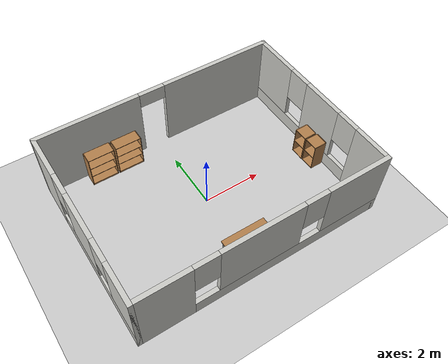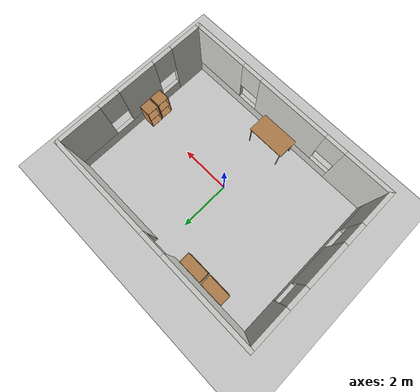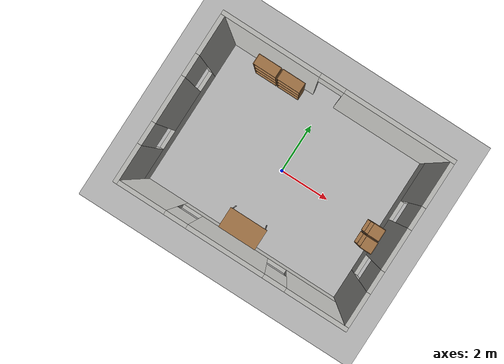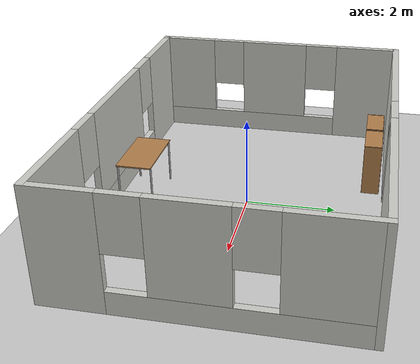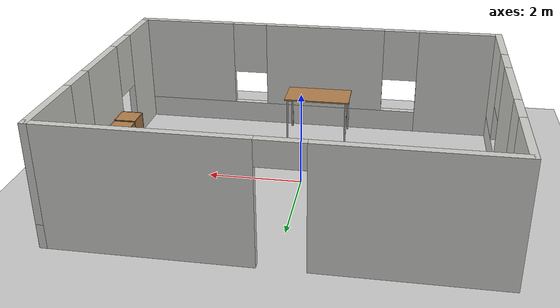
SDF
<sdf version="1.7">
 <world name="default">
  <light name="sun" type="directional">
   <pose>0 0 10 0 -0 0</pose>
   <diffuse>0.8 0.8 0.8 1</diffuse>
   <specular>0.2 0.2 0.2 1</specular>
   <attenuation>
    <range>1000</range>
    <constant>0.9</constant>
    <linear>0.01</linear>
    <quadratic>0.001</quadratic>
   </attenuation>
   <direction>-0.5 0.1 -0.9</direction>
   <spot><inner_angle>0</inner_angle><outer_angle>0</outer_angle><falloff>0</falloff></spot>
  </light>
  <model name="ground_plane">
   <static>1</static>
   <link name="link">
    <collision name="collision">
     <geometry><plane><normal>0 0 1</normal><size>100 100</size></plane></geometry>
     <surface>
      <contact><collide_bitmask>65535</collide_bitmask></contact>
      <friction><ode><mu>100</mu><mu2>50</mu2></ode></friction>
     </surface>
    </collision>
    <visual name="visual">
     <cast_shadows>0</cast_shadows>
     <geometry><plane><normal>0 0 1</normal><size>100 100</size></plane></geometry>
     <material>
      <script><uri>file://media/materials/scripts/gazebo.material</uri><name>Gazebo/Grey</name></script>
     </material>
    </visual>
   </link>
  </model>
  <gravity>0 0 -9.8</gravity>
  <magnetic_field>6e-06 2.3e-05 -4.2e-05</magnetic_field>
  <atmosphere type="adiabatic"/>
  <physics type="ode">
   <max_step_size>0.001</max_step_size>
   <real_time_factor>1</real_time_factor>
   <real_time_update_rate>1000</real_time_update_rate>
  </physics>
  <scene><ambient>0.4 0.4 0.4 1</ambient><background>0.7 0.7 0.7 1</background><shadows>1</shadows></scene>
  <audio><device>default</device></audio>
  <spherical_coordinates>
   <surface_model>EARTH_WGS84</surface_model>
   <latitude_deg>0</latitude_deg>
   <longitude_deg>0</longitude_deg>
   <elevation>0</elevation>
   <heading_deg>0</heading_deg>
  </spherical_coordinates>
  <model name="simple_room">
   <pose>0.095692 0.050068 0 0 -0 0</pose>
   <link name="Wall_10">
    <pose>0 3.05 0 0 -0 3.14159</pose>
    <visual name="Wall_10_Visual_0">
     <pose>-2.24017 0 1.25 0 -0 0</pose>
     <geometry><box><size>4.01967 0.15 2.5</size></box></geometry>
     <material>
      <script><uri>file://media/materials/scripts/gazebo.material</uri><name>Gazebo/CeilingTiled</name></script>
      <ambient>1 1 1 1</ambient>
     </material>
     <meta><layer>0</layer></meta>
    </visual>
    <collision name="Wall_10_Collision_0">
     <geometry><box><size>4.01967 0.15 2.5</size></box></geometry>
     <pose>-2.24017 0 1.25 0 -0 0</pose>
    </collision>
    <visual name="Wall_10_Visual_1">
     <pose>2.45983 0 1.25 0 -0 0</pose>
     <geometry><box><size>3.58033 0.15 2.5</size></box></geometry>
     <material>
      <script><uri>file://media/materials/scripts/gazebo.material</uri><name>Gazebo/CeilingTiled</name></script>
      <ambient>1 1 1 1</ambient>
     </material>
     <meta><layer>0</layer></meta>
    </visual>
    <collision name="Wall_10_Collision_1">
     <geometry><box><size>3.58033 0.15 2.5</size></box></geometry>
     <pose>2.45983 0 1.25 0 -0 0</pose>
    </collision>
    <visual name="Wall_10_Visual_2">
     <pose>0.219666 0 2.25 0 -0 0</pose>
     <geometry><box><size>0.9 0.15 0.5</size></box></geometry>
     <material>
      <script><uri>file://media/materials/scripts/gazebo.material</uri><name>Gazebo/CeilingTiled</name></script>
      <ambient>1 1 1 1</ambient>
     </material>
     <meta><layer>0</layer></meta>
    </visual>
    <collision name="Wall_10_Collision_2">
     <geometry><box><size>0.9 0.15 0.5</size></box></geometry>
     <pose>0.219666 0 2.25 0 -0 0</pose>
    </collision>
   </link>
   <link name="Wall_7">
    <pose>-4.175 0 0 0 -0 -1.5708</pose>
    <visual name="Wall_7_Visual_0">
     <pose>-2.33914 0 1.25 0 -0 0</pose>
     <geometry><box><size>1.57171 0.15 2.5</size></box></geometry>
     <material>
      <script><uri>file://media/materials/scripts/gazebo.material</uri><name>Gazebo/CeilingTiled</name></script>
      <ambient>1 1 1 1</ambient>
     </material>
     <meta><layer>0</layer></meta>
    </visual>
    <collision name="Wall_7_Collision_0">
     <geometry><box><size>1.57171 0.15 2.5</size></box></geometry>
     <pose>-2.33914 0 1.25 0 -0 0</pose>
    </collision>
    <visual name="Wall_7_Visual_1">
     <pose>0.785855 0 0.25 0 -0 0</pose>
     <geometry><box><size>4.67829 0.15 0.5</size></box></geometry>
     <material>
      <script><uri>file://media/materials/scripts/gazebo.material</uri><name>Gazebo/CeilingTiled</name></script>
      <ambient>1 1 1 1</ambient>
     </material>
     <meta><layer>0</layer></meta>
    </visual>
    <collision name="Wall_7_Collision_1">
     <geometry><box><size>4.67829 0.15 0.5</size></box></geometry>
     <pose>0.785855 0 0.25 0 -0 0</pose>
    </collision>
    <visual name="Wall_7_Visual_2">
     <pose>0.084197 0 1.5 0 -0 0</pose>
     <geometry><box><size>1.67498 0.15 2</size></box></geometry>
     <material>
      <script><uri>file://media/materials/scripts/gazebo.material</uri><name>Gazebo/CeilingTiled</name></script>
      <ambient>1 1 1 1</ambient>
     </material>
     <meta><layer>0</layer></meta>
    </visual>
    <collision name="Wall_7_Collision_2">
     <geometry><box><size>1.67498 0.15 2</size></box></geometry>
     <pose>0.084197 0 1.5 0 -0 0</pose>
    </collision>
    <visual name="Wall_7_Visual_3">
     <pose>2.42334 0 1.5 0 -0 0</pose>
     <geometry><box><size>1.40332 0.15 2</size></box></geometry>
     <material>
      <script><uri>file://media/materials/scripts/gazebo.material</uri><name>Gazebo/CeilingTiled</name></script>
      <ambient>1 1 1 1</ambient>
     </material>
     <meta><layer>0</layer></meta>
    </visual>
    <collision name="Wall_7_Collision_3">
     <geometry><box><size>1.40332 0.15 2</size></box></geometry>
     <pose>2.42334 0 1.5 0 -0 0</pose>
    </collision>
    <visual name="Wall_7_Visual_4">
     <pose>-1.15329 0 1.9 0 -0 0</pose>
     <geometry><box><size>0.8 0.15 1.2</size></box></geometry>
     <material>
      <script><uri>file://media/materials/scripts/gazebo.material</uri><name>Gazebo/CeilingTiled</name></script>
      <ambient>1 1 1 1</ambient>
     </material>
     <meta><layer>0</layer></meta>
    </visual>
    <collision name="Wall_7_Collision_4">
     <geometry><box><size>0.8 0.15 1.2</size></box></geometry>
     <pose>-1.15329 0 1.9 0 -0 0</pose>
    </collision>
    <visual name="Wall_7_Visual_5">
     <pose>1.32168 0 1.9 0 -0 0</pose>
     <geometry><box><size>0.8 0.15 1.2</size></box></geometry>
     <material>
      <script><uri>file://media/materials/scripts/gazebo.material</uri><name>Gazebo/CeilingTiled</name></script>
      <ambient>1 1 1 1</ambient>
     </material>
     <meta><layer>0</layer></meta>
    </visual>
    <collision name="Wall_7_Collision_5">
     <geometry><box><size>0.8 0.15 1.2</size></box></geometry>
     <pose>1.32168 0 1.9 0 -0 0</pose>
    </collision>
   </link>
   <link name="Wall_8">
    <pose>0 -3.05 0 0 -0 0</pose>
    <visual name="Wall_8_Visual_0">
     <pose>-3.32536 0 1.25 0 -0 0</pose>
     <geometry><box><size>1.84928 0.15 2.5</size></box></geometry>
     <material>
      <script><uri>file://media/materials/scripts/gazebo.material</uri><name>Gazebo/CeilingTiled</name></script>
      <ambient>1 1 1 1</ambient>
     </material>
     <meta><layer>0</layer></meta>
    </visual>
    <collision name="Wall_8_Collision_0">
     <geometry><box><size>1.84928 0.15 2.5</size></box></geometry>
     <pose>-3.32536 0 1.25 0 -0 0</pose>
    </collision>
    <visual name="Wall_8_Visual_1">
     <pose>0.924639 0 0.25 0 -0 0</pose>
     <geometry><box><size>6.65072 0.15 0.5</size></box></geometry>
     <material>
      <script><uri>file://media/materials/scripts/gazebo.material</uri><name>Gazebo/CeilingTiled</name></script>
      <ambient>1 1 1 1</ambient>
     </material>
     <meta><layer>0</layer></meta>
    </visual>
    <collision name="Wall_8_Collision_1">
     <geometry><box><size>6.65072 0.15 0.5</size></box></geometry>
     <pose>0.924639 0 0.25 0 -0 0</pose>
    </collision>
    <visual name="Wall_8_Visual_2">
     <pose>-0.208101 0 1.5 0 -0 0</pose>
     <geometry><box><size>2.78524 0.15 2</size></box></geometry>
     <material>
      <script><uri>file://media/materials/scripts/gazebo.material</uri><name>Gazebo/CeilingTiled</name></script>
      <ambient>1 1 1 1</ambient>
     </material>
     <meta><layer>0</layer></meta>
    </visual>
    <collision name="Wall_8_Collision_2">
     <geometry><box><size>2.78524 0.15 2</size></box></geometry>
     <pose>-0.208101 0 1.5 0 -0 0</pose>
    </collision>
    <visual name="Wall_8_Visual_3">
     <pose>3.11726 0 1.5 0 -0 0</pose>
     <geometry><box><size>2.26548 0.15 2</size></box></geometry>
     <material>
      <script><uri>file://media/materials/scripts/gazebo.material</uri><name>Gazebo/CeilingTiled</name></script>
      <ambient>1 1 1 1</ambient>
     </material>
     <meta><layer>0</layer></meta>
    </visual>
    <collision name="Wall_8_Collision_3">
     <geometry><box><size>2.26548 0.15 2</size></box></geometry>
     <pose>3.11726 0 1.5 0 -0 0</pose>
    </collision>
    <visual name="Wall_8_Visual_4">
     <pose>-2.00072 0 1.9 0 -0 0</pose>
     <geometry><box><size>0.8 0.15 1.2</size></box></geometry>
     <material>
      <script><uri>file://media/materials/scripts/gazebo.material</uri><name>Gazebo/CeilingTiled</name></script>
      <ambient>1 1 1 1</ambient>
     </material>
     <meta><layer>0</layer></meta>
    </visual>
    <collision name="Wall_8_Collision_4">
     <geometry><box><size>0.8 0.15 1.2</size></box></geometry>
     <pose>-2.00072 0 1.9 0 -0 0</pose>
    </collision>
    <visual name="Wall_8_Visual_5">
     <pose>1.58452 0 1.9 0 -0 0</pose>
     <geometry><box><size>0.8 0.15 1.2</size></box></geometry>
     <material>
      <script><uri>file://media/materials/scripts/gazebo.material</uri><name>Gazebo/CeilingTiled</name></script>
      <ambient>1 1 1 1</ambient>
     </material>
     <meta><layer>0</layer></meta>
    </visual>
    <collision name="Wall_8_Collision_5">
     <geometry><box><size>0.8 0.15 1.2</size></box></geometry>
     <pose>1.58452 0 1.9 0 -0 0</pose>
    </collision>
   </link>
   <link name="Wall_9">
    <pose>4.175 0 0 0 -0 1.5708</pose>
    <visual name="Wall_9_Visual_0">
     <pose>-2.43491 0 1.25 0 -0 0</pose>
     <geometry><box><size>1.38018 0.15 2.5</size></box></geometry>
     <material>
      <script><uri>file://media/materials/scripts/gazebo.material</uri><name>Gazebo/CeilingTiled</name></script>
      <ambient>1 1 1 1</ambient>
     </material>
     <meta><layer>0</layer></meta>
    </visual>
    <collision name="Wall_9_Collision_0">
     <geometry><box><size>1.38018 0.15 2.5</size></box></geometry>
     <pose>-2.43491 0 1.25 0 -0 0</pose>
    </collision>
    <visual name="Wall_9_Visual_1">
     <pose>0.690092 0 0.25 0 -0 0</pose>
     <geometry><box><size>4.86982 0.15 0.5</size></box></geometry>
     <material>
      <script><uri>file://media/materials/scripts/gazebo.material</uri><name>Gazebo/CeilingTiled</name></script>
      <ambient>1 1 1 1</ambient>
     </material>
     <meta><layer>0</layer></meta>
    </visual>
    <collision name="Wall_9_Collision_1">
     <geometry><box><size>4.86982 0.15 0.5</size></box></geometry>
     <pose>0.690092 0 0.25 0 -0 0</pose>
    </collision>
    <visual name="Wall_9_Visual_2">
     <pose>-0.188285 0 1.5 0 -0 0</pose>
     <geometry><box><size>1.51306 0.15 2</size></box></geometry>
     <material>
      <script><uri>file://media/materials/scripts/gazebo.material</uri><name>Gazebo/CeilingTiled</name></script>
      <ambient>1 1 1 1</ambient>
     </material>
     <meta><layer>0</layer></meta>
    </visual>
    <collision name="Wall_9_Collision_2">
     <geometry><box><size>1.51306 0.15 2</size></box></geometry>
     <pose>-0.188285 0 1.5 0 -0 0</pose>
    </collision>
    <visual name="Wall_9_Visual_3">
     <pose>2.24662 0 1.5 0 -0 0</pose>
     <geometry><box><size>1.75676 0.15 2</size></box></geometry>
     <material>
      <script><uri>file://media/materials/scripts/gazebo.material</uri><name>Gazebo/CeilingTiled</name></script>
      <ambient>1 1 1 1</ambient>
     </material>
     <meta><layer>0</layer></meta>
    </visual>
    <collision name="Wall_9_Collision_3">
     <geometry><box><size>1.75676 0.15 2</size></box></geometry>
     <pose>2.24662 0 1.5 0 -0 0</pose>
    </collision>
    <visual name="Wall_9_Visual_4">
     <pose>-1.34482 0 1.9 0 -0 0</pose>
     <geometry><box><size>0.8 0.15 1.2</size></box></geometry>
     <material>
      <script><uri>file://media/materials/scripts/gazebo.material</uri><name>Gazebo/CeilingTiled</name></script>
      <ambient>1 1 1 1</ambient>
     </material>
     <meta><layer>0</layer></meta>
    </visual>
    <collision name="Wall_9_Collision_4">
     <geometry><box><size>0.8 0.15 1.2</size></box></geometry>
     <pose>-1.34482 0 1.9 0 -0 0</pose>
    </collision>
    <visual name="Wall_9_Visual_5">
     <pose>0.968245 0 1.9 0 -0 0</pose>
     <geometry><box><size>0.8 0.15 1.2</size></box></geometry>
     <material>
      <script><uri>file://media/materials/scripts/gazebo.material</uri><name>Gazebo/CeilingTiled</name></script>
      <ambient>1 1 1 1</ambient>
     </material>
     <meta><layer>0</layer></meta>
    </visual>
    <collision name="Wall_9_Collision_5">
     <geometry><box><size>0.8 0.15 1.2</size></box></geometry>
     <pose>0.968245 0 1.9 0 -0 0</pose>
    </collision>
   </link>
   <static>1</static>
  </model>
  <model name="table">
   <static>1</static>
   <link name="link">
    <collision name="surface">
     <pose>0 0 1 0 -0 0</pose>
     <geometry><box><size>1.5 0.8 0.03</size></box></geometry>
     <surface><friction><ode><mu>0.6</mu><mu2>0.6</mu2></ode></friction></surface>
    </collision>
    <visual name="visual1">
     <pose>0 0 1 0 -0 0</pose>
     <geometry><box><size>1.5 0.8 0.03</size></box></geometry>
     <material>
      <script><uri>file://media/materials/scripts/gazebo.material</uri><name>Gazebo/Wood</name></script>
     </material>
    </visual>
    <collision name="front_left_leg">
     <pose>0.68 0.38 0.5 0 -0 0</pose>
     <geometry><cylinder><radius>0.02</radius><length>1</length></cylinder></geometry>
    </collision>
    <visual name="front_left_leg">
     <pose>0.68 0.38 0.5 0 -0 0</pose>
     <geometry><cylinder><radius>0.02</radius><length>1</length></cylinder></geometry>
     <material>
      <script><uri>file://media/materials/scripts/gazebo.material</uri><name>Gazebo/Grey</name></script>
     </material>
    </visual>
    <collision name="front_right_leg">
     <pose>0.68 -0.38 0.5 0 -0 0</pose>
     <geometry><cylinder><radius>0.02</radius><length>1</length></cylinder></geometry>
    </collision>
    <visual name="front_right_leg">
     <pose>0.68 -0.38 0.5 0 -0 0</pose>
     <geometry><cylinder><radius>0.02</radius><length>1</length></cylinder></geometry>
     <material>
      <script><uri>file://media/materials/scripts/gazebo.material</uri><name>Gazebo/Grey</name></script>
     </material>
    </visual>
    <collision name="back_right_leg">
     <pose>-0.68 -0.38 0.5 0 -0 0</pose>
     <geometry><cylinder><radius>0.02</radius><length>1</length></cylinder></geometry>
    </collision>
    <visual name="back_right_leg">
     <pose>-0.68 -0.38 0.5 0 -0 0</pose>
     <geometry><cylinder><radius>0.02</radius><length>1</length></cylinder></geometry>
     <material>
      <script><uri>file://media/materials/scripts/gazebo.material</uri><name>Gazebo/Grey</name></script>
     </material>
    </visual>
    <collision name="back_left_leg">
     <pose>-0.68 0.38 0.5 0 -0 0</pose>
     <geometry><cylinder><radius>0.02</radius><length>1</length></cylinder></geometry>
    </collision>
    <visual name="back_left_leg">
     <pose>-0.68 0.38 0.5 0 -0 0</pose>
     <geometry><cylinder><radius>0.02</radius><length>1</length></cylinder></geometry>
     <material>
      <script><uri>file://media/materials/scripts/gazebo.material</uri><name>Gazebo/Grey</name></script>
     </material>
    </visual>
   </link>
   <pose>-0.045372 -2.41761 0 0 -0 0</pose>
  </model>
  <model name="cabinet">
   <static>1</static>
   <link name="cabinet_bottom_plate">
    <inertial>
     <pose>0 0 -1 0 -0 0</pose>
     <inertia><ixx>2.05</ixx><ixy>0</ixy><ixz>0</ixz><iyy>2.05</iyy><iyz>0</iyz><izz>2.05</izz></inertia>
     <mass>25</mass>
    </inertial>
    <collision name="cabinet_bottom_plate_geom">
     <pose>0 0 0.01 0 -0 0</pose>
     <geometry><box><size>0.45 0.45 0.02</size></box></geometry>
    </collision>
    <visual name="cabinet_bottom_plate_geom_visual">
     <pose>0 0 0.01 0 -0 0</pose>
     <geometry><box><size>0.45 0.45 0.02</size></box></geometry>
     <material>
      <script><uri>file://media/materials/scripts/gazebo.material</uri><name>Gazebo/Wood</name></script>
     </material>
    </visual>
    <collision name="cabinet_bottom_plate_geom_cabinet_back_plate">
     <pose>0.235 0 0.51 0 -0 0</pose>
     <geometry><box><size>0.02 0.45 1.02</size></box></geometry>
    </collision>
    <visual name="cabinet_bottom_plate_geom_cabinet_back_plate_visual">
     <pose>0.235 0 0.51 0 -0 0</pose>
     <geometry><box><size>0.02 0.45 1.02</size></box></geometry>
     <material>
      <script><uri>file://media/materials/scripts/gazebo.material</uri><name>Gazebo/Wood</name></script>
     </material>
    </visual>
    <collision name="cabinet_bottom_plate_geom_cabinet_left_plate">
     <pose>0 0.235 0.51 0 -0 0</pose>
     <geometry><box><size>0.45 0.02 1.02</size></box></geometry>
    </collision>
    <visual name="cabinet_bottom_plate_geom_cabinet_left_plate_visual">
     <pose>0 0.235 0.51 0 -0 0</pose>
     <geometry><box><size>0.45 0.02 1.02</size></box></geometry>
     <material>
      <script><uri>file://media/materials/scripts/gazebo.material</uri><name>Gazebo/Wood</name></script>
     </material>
    </visual>
    <collision name="cabinet_bottom_plate_geom_cabinet_middle_plate">
     <pose>0 0 0.51 0 -0 0</pose>
     <geometry><box><size>0.45 0.45 0.02</size></box></geometry>
    </collision>
    <visual name="cabinet_bottom_plate_geom_cabinet_middle_plate_visual">
     <pose>0 0 0.51 0 -0 0</pose>
     <geometry><box><size>0.45 0.45 0.02</size></box></geometry>
     <material>
      <script><uri>file://media/materials/scripts/gazebo.material</uri><name>Gazebo/Wood</name></script>
     </material>
    </visual>
    <collision name="cabinet_bottom_plate_geom_cabinet_right_plate">
     <pose>0 -0.235 0.51 0 -0 0</pose>
     <geometry><box><size>0.45 0.02 1.02</size></box></geometry>
    </collision>
    <visual name="cabinet_bottom_plate_geom_cabinet_right_plate_visual">
     <pose>0 -0.235 0.51 0 -0 0</pose>
     <geometry><box><size>0.45 0.02 1.02</size></box></geometry>
     <material>
      <script><uri>file://media/materials/scripts/gazebo.material</uri><name>Gazebo/Wood</name></script>
     </material>
    </visual>
    <collision name="cabinet_bottom_plate_geom_cabinet_top_plate">
     <pose>0 0 1.01 0 -0 0</pose>
     <geometry><box><size>0.45 0.45 0.02</size></box></geometry>
    </collision>
    <visual name="cabinet_bottom_plate_geom_cabinet_top_plate_visual">
     <pose>0 0 1.01 0 -0 0</pose>
     <geometry><box><size>0.45 0.45 0.02</size></box></geometry>
     <material>
      <script><uri>file://media/materials/scripts/gazebo.material</uri><name>Gazebo/Wood</name></script>
     </material>
    </visual>
   </link>
   <pose>3.93221 -0.52659 0 0 -0 0</pose>
  </model>
  <model name="cabinet_0">
   <static>1</static>
   <link name="cabinet_bottom_plate">
    <inertial>
     <pose>0 0 -1 0 -0 0</pose>
     <inertia><ixx>2.05</ixx><ixy>0</ixy><ixz>0</ixz><iyy>2.05</iyy><iyz>0</iyz><izz>2.05</izz></inertia>
     <mass>25</mass>
    </inertial>
    <collision name="cabinet_bottom_plate_geom">
     <pose>0 0 0.01 0 -0 0</pose>
     <geometry><box><size>0.45 0.45 0.02</size></box></geometry>
    </collision>
    <visual name="cabinet_bottom_plate_geom_visual">
     <pose>0 0 0.01 0 -0 0</pose>
     <geometry><box><size>0.45 0.45 0.02</size></box></geometry>
     <material>
      <script><uri>file://media/materials/scripts/gazebo.material</uri><name>Gazebo/Wood</name></script>
     </material>
    </visual>
    <collision name="cabinet_bottom_plate_geom_cabinet_back_plate">
     <pose>0.235 0 0.51 0 -0 0</pose>
     <geometry><box><size>0.02 0.45 1.02</size></box></geometry>
    </collision>
    <visual name="cabinet_bottom_plate_geom_cabinet_back_plate_visual">
     <pose>0.235 0 0.51 0 -0 0</pose>
     <geometry><box><size>0.02 0.45 1.02</size></box></geometry>
     <material>
      <script><uri>file://media/materials/scripts/gazebo.material</uri><name>Gazebo/Wood</name></script>
     </material>
    </visual>
    <collision name="cabinet_bottom_plate_geom_cabinet_left_plate">
     <pose>0 0.235 0.51 0 -0 0</pose>
     <geometry><box><size>0.45 0.02 1.02</size></box></geometry>
    </collision>
    <visual name="cabinet_bottom_plate_geom_cabinet_left_plate_visual">
     <pose>0 0.235 0.51 0 -0 0</pose>
     <geometry><box><size>0.45 0.02 1.02</size></box></geometry>
     <material>
      <script><uri>file://media/materials/scripts/gazebo.material</uri><name>Gazebo/Wood</name></script>
     </material>
    </visual>
    <collision name="cabinet_bottom_plate_geom_cabinet_middle_plate">
     <pose>0 0 0.51 0 -0 0</pose>
     <geometry><box><size>0.45 0.45 0.02</size></box></geometry>
    </collision>
    <visual name="cabinet_bottom_plate_geom_cabinet_middle_plate_visual">
     <pose>0 0 0.51 0 -0 0</pose>
     <geometry><box><size>0.45 0.45 0.02</size></box></geometry>
     <material>
      <script><uri>file://media/materials/scripts/gazebo.material</uri><name>Gazebo/Wood</name></script>
     </material>
    </visual>
    <collision name="cabinet_bottom_plate_geom_cabinet_right_plate">
     <pose>0 -0.235 0.51 0 -0 0</pose>
     <geometry><box><size>0.45 0.02 1.02</size></box></geometry>
    </collision>
    <visual name="cabinet_bottom_plate_geom_cabinet_right_plate_visual">
     <pose>0 -0.235 0.51 0 -0 0</pose>
     <geometry><box><size>0.45 0.02 1.02</size></box></geometry>
     <material>
      <script><uri>file://media/materials/scripts/gazebo.material</uri><name>Gazebo/Wood</name></script>
     </material>
    </visual>
    <collision name="cabinet_bottom_plate_geom_cabinet_top_plate">
     <pose>0 0 1.01 0 -0 0</pose>
     <geometry><box><size>0.45 0.45 0.02</size></box></geometry>
    </collision>
    <visual name="cabinet_bottom_plate_geom_cabinet_top_plate_visual">
     <pose>0 0 1.01 0 -0 0</pose>
     <geometry><box><size>0.45 0.45 0.02</size></box></geometry>
     <material>
      <script><uri>file://media/materials/scripts/gazebo.material</uri><name>Gazebo/Wood</name></script>
     </material>
    </visual>
   </link>
   <pose>3.91731 -0.015263 0 0 -0 0</pose>
  </model>
  <model name="bookshelf">
   <static>1</static>
   <link name="link">
    <inertial><mass>1</mass></inertial>
    <collision name="back">
     <pose>0 0.005 0.6 0 -0 0</pose>
     <geometry><box><size>0.9 0.01 1.2</size></box></geometry>
    </collision>
    <visual name="visual1">
     <pose>0 0.005 0.6 0 -0 0</pose>
     <geometry><box><size>0.9 0.01 1.2</size></box></geometry>
     <material>
      <script><uri>file://media/materials/scripts/gazebo.material</uri><name>Gazebo/Wood</name></script>
     </material>
    </visual>
    <collision name="left_side">
     <pose>0.45 -0.195 0.6 0 -0 0</pose>
     <geometry><box><size>0.02 0.4 1.2</size></box></geometry>
    </collision>
    <visual name="visual2">
     <pose>0.45 -0.195 0.6 0 -0 0</pose>
     <geometry><box><size>0.02 0.4 1.2</size></box></geometry>
     <material>
      <script><uri>file://media/materials/scripts/gazebo.material</uri><name>Gazebo/Wood</name></script>
     </material>
    </visual>
    <collision name="right_side">
     <pose>-0.45 -0.195 0.6 0 -0 0</pose>
     <geometry><box><size>0.02 0.4 1.2</size></box></geometry>
    </collision>
    <visual name="visual3">
     <pose>-0.45 -0.195 0.6 0 -0 0</pose>
     <geometry><box><size>0.02 0.4 1.2</size></box></geometry>
     <material>
      <script><uri>file://media/materials/scripts/gazebo.material</uri><name>Gazebo/Wood</name></script>
     </material>
    </visual>
    <collision name="bottom">
     <pose>0 -0.195 0.03 0 -0 0</pose>
     <geometry><box><size>0.88 0.4 0.06</size></box></geometry>
    </collision>
    <visual name="visual4">
     <pose>0 -0.195 0.03 0 -0 0</pose>
     <geometry><box><size>0.88 0.4 0.06</size></box></geometry>
     <material>
      <script><uri>file://media/materials/scripts/gazebo.material</uri><name>Gazebo/Wood</name></script>
     </material>
    </visual>
    <collision name="top">
     <pose>0 -0.195 1.19 0 -0 0</pose>
     <geometry><box><size>0.88 0.4 0.02</size></box></geometry>
    </collision>
    <visual name="visual5">
     <pose>0 -0.195 1.19 0 -0 0</pose>
     <geometry><box><size>0.88 0.4 0.02</size></box></geometry>
     <material>
      <script><uri>file://media/materials/scripts/gazebo.material</uri><name>Gazebo/Wood</name></script>
     </material>
    </visual>
    <collision name="low_shelf">
     <pose>0 -0.195 0.43 0 -0 0</pose>
     <geometry><box><size>0.88 0.4 0.02</size></box></geometry>
    </collision>
    <visual name="visual6">
     <pose>0 -0.195 0.43 0 -0 0</pose>
     <geometry><box><size>0.88 0.4 0.02</size></box></geometry>
     <material>
      <script><uri>file://media/materials/scripts/gazebo.material</uri><name>Gazebo/Wood</name></script>
     </material>
    </visual>
    <collision name="high_shelf">
     <pose>0 -0.195 0.8 0 -0 0</pose>
     <geometry><box><size>0.88 0.4 0.02</size></box></geometry>
    </collision>
    <visual name="visual7">
     <pose>0 -0.195 0.8 0 -0 0</pose>
     <geometry><box><size>0.88 0.4 0.02</size></box></geometry>
     <material>
      <script><uri>file://media/materials/scripts/gazebo.material</uri><name>Gazebo/Wood</name></script>
     </material>
    </visual>
   </link>
   <pose>-1.3862 2.9398 0 0 -0 0</pose>
  </model>
  <model name="bookshelf_0">
   <static>1</static>
   <link name="link">
    <inertial><mass>1</mass></inertial>
    <collision name="back">
     <pose>0 0.005 0.6 0 -0 0</pose>
     <geometry><box><size>0.9 0.01 1.2</size></box></geometry>
    </collision>
    <visual name="visual1">
     <pose>0 0.005 0.6 0 -0 0</pose>
     <geometry><box><size>0.9 0.01 1.2</size></box></geometry>
     <material>
      <script><uri>file://media/materials/scripts/gazebo.material</uri><name>Gazebo/Wood</name></script>
     </material>
    </visual>
    <collision name="left_side">
     <pose>0.45 -0.195 0.6 0 -0 0</pose>
     <geometry><box><size>0.02 0.4 1.2</size></box></geometry>
    </collision>
    <visual name="visual2">
     <pose>0.45 -0.195 0.6 0 -0 0</pose>
     <geometry><box><size>0.02 0.4 1.2</size></box></geometry>
     <material>
      <script><uri>file://media/materials/scripts/gazebo.material</uri><name>Gazebo/Wood</name></script>
     </material>
    </visual>
    <collision name="right_side">
     <pose>-0.45 -0.195 0.6 0 -0 0</pose>
     <geometry><box><size>0.02 0.4 1.2</size></box></geometry>
    </collision>
    <visual name="visual3">
     <pose>-0.45 -0.195 0.6 0 -0 0</pose>
     <geometry><box><size>0.02 0.4 1.2</size></box></geometry>
     <material>
      <script><uri>file://media/materials/scripts/gazebo.material</uri><name>Gazebo/Wood</name></script>
     </material>
    </visual>
    <collision name="bottom">
     <pose>0 -0.195 0.03 0 -0 0</pose>
     <geometry><box><size>0.88 0.4 0.06</size></box></geometry>
    </collision>
    <visual name="visual4">
     <pose>0 -0.195 0.03 0 -0 0</pose>
     <geometry><box><size>0.88 0.4 0.06</size></box></geometry>
     <material>
      <script><uri>file://media/materials/scripts/gazebo.material</uri><name>Gazebo/Wood</name></script>
     </material>
    </visual>
    <collision name="top">
     <pose>0 -0.195 1.19 0 -0 0</pose>
     <geometry><box><size>0.88 0.4 0.02</size></box></geometry>
    </collision>
    <visual name="visual5">
     <pose>0 -0.195 1.19 0 -0 0</pose>
     <geometry><box><size>0.88 0.4 0.02</size></box></geometry>
     <material>
      <script><uri>file://media/materials/scripts/gazebo.material</uri><name>Gazebo/Wood</name></script>
     </material>
    </visual>
    <collision name="low_shelf">
     <pose>0 -0.195 0.43 0 -0 0</pose>
     <geometry><box><size>0.88 0.4 0.02</size></box></geometry>
    </collision>
    <visual name="visual6">
     <pose>0 -0.195 0.43 0 -0 0</pose>
     <geometry><box><size>0.88 0.4 0.02</size></box></geometry>
     <material>
      <script><uri>file://media/materials/scripts/gazebo.material</uri><name>Gazebo/Wood</name></script>
     </material>
    </visual>
    <collision name="high_shelf">
     <pose>0 -0.195 0.8 0 -0 0</pose>
     <geometry><box><size>0.88 0.4 0.02</size></box></geometry>
    </collision>
    <visual name="visual7">
     <pose>0 -0.195 0.8 0 -0 0</pose>
     <geometry><box><size>0.88 0.4 0.02</size></box></geometry>
     <material>
      <script><uri>file://media/materials/scripts/gazebo.material</uri><name>Gazebo/Wood</name></script>
     </material>
    </visual>
   </link>
   <pose>-2.35159 2.94154 0 0 -0 0</pose>
  </model>
 </world>
</sdf>
